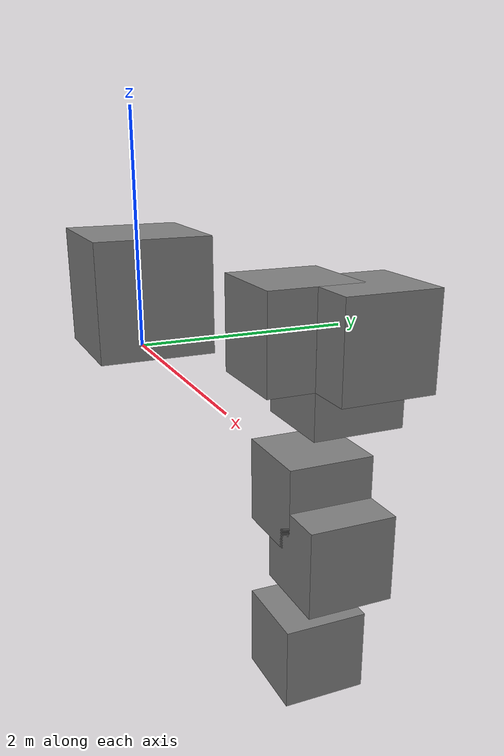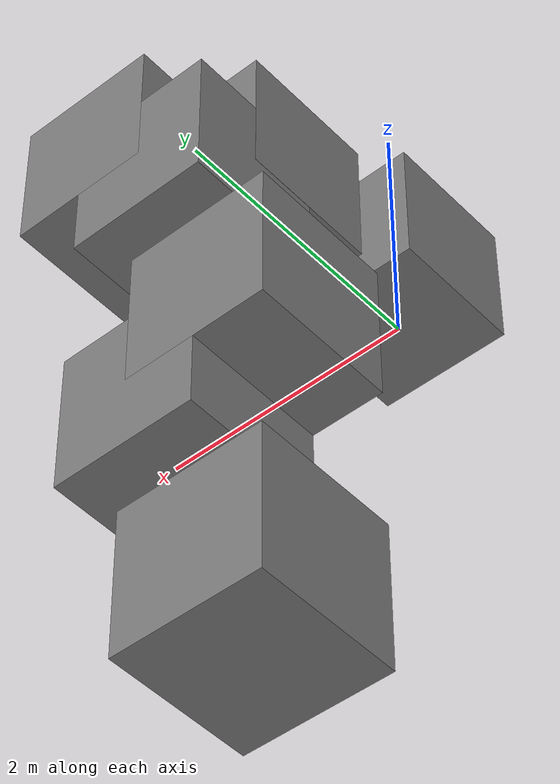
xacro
<?xml version="1.0"?>
<robot xmlns:xacro="http://www.ros.org/wiki/xacro" name="myrobot">

  <link name="base_link">
    <visual>
      <geometry>
        <box size="1 1 1"/>
      </geometry>
      <origin xyz="0 0 0.5" rpy="0 0 0"/>
      <material name="grey">
        <color rgba="0.5 0.5 0.5 1"/>
      </material>
    </visual>
  </link>
  <joint name="base_joint" type="fixed">
    <parent link="base_link"/>
    <child link="link_0"/>
    <origin xyz="0 0 0" rpy="0 0 0"/>
  </joint>

  <xacro:macro name="link" params="name">
    <link name="${name}">
      <visual>
        <geometry>
          <box size="1 1 1"/>
        </geometry>
        <origin xyz="0 0 0.5" rpy="0 0 0"/>
        <material name="grey">
          <color rgba="0.5 0.5 0.5 1"/>
        </material>
      </visual>
      <collision>
        <geometry>
          <box size="1 1 1"/>
        </geometry>
        <origin xyz="0 0 0.5" rpy="0 0 0"/>
      </collision>
      <inertial>
        <mass value="0.5"/>
        <inertia ixx="0.01" iyy="0.01" izz="0.01" ixy="0.0" ixz="0.0" iyz="0.0"/>
        <origin xyz="0 0 0.5" rpy="0 0 0"/>
      </inertial>
    </link>
  </xacro:macro>

  <xacro:macro name="joint" params="name parent child xyz rpy axis lower upper">
    <joint name="${name}" type="revolute">
      <parent link="${parent}"/>
      <child link="${child}"/>
      <origin xyz="${xyz}" rpy="${rpy}"/>
      <axis xyz="${axis}"/>
      <limit lower="${lower}" upper="${upper}" effort="1.0" velocity="1.0"/>
    </joint>
  </xacro:macro>

  <xacro:link name="link_0"/>
  <xacro:link name="link_1"/>
  <xacro:link name="link_2"/>
  <xacro:link name="link_3"/>
  <xacro:link name="link_4"/>
  <xacro:link name="link_5"/>
  <xacro:link name="link_6"/>

  <xacro:joint name="joint_1" parent="link_0" child="link_1" xyz="0 1 0" rpy="-1.57 0 0" axis="0 0 1" lower="-3.14" upper="3.14"/>
  <xacro:joint name="joint_2" parent="link_1" child="link_2" xyz="0 0 1" rpy="0 1.57 0" axis="0 0 1" lower="-0.86" upper="0.73"/>
  <xacro:joint name="joint_3" parent="link_2" child="link_3" xyz="0 1 0" rpy="1.57 0 0" axis="0 0 1" lower="-2.69" upper="2.31"/>
  <xacro:joint name="joint_4" parent="link_3" child="link_4" xyz="0 0 -1" rpy="1.57 0 0" axis="0 0 1" lower="-1.57" upper="1.45"/>
  <xacro:joint name="joint_5" parent="link_4" child="link_5" xyz="0 -1 0" rpy="-1.57 0 0" axis="0 0 1" lower="-3.14" upper="1.90"/>
  <xacro:joint name="joint_6" parent="link_5" child="link_6" xyz="0 0 -1" rpy="1.57 0 0" axis="0 0 1" lower="-0.57" upper="1.19"/>

</robot>
